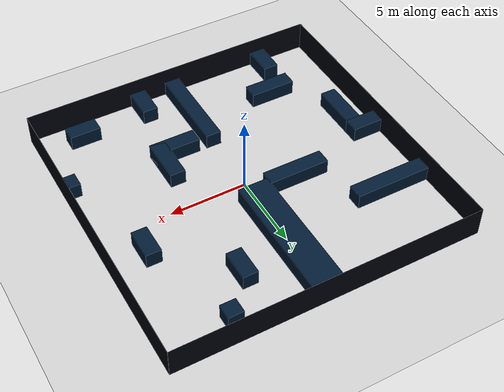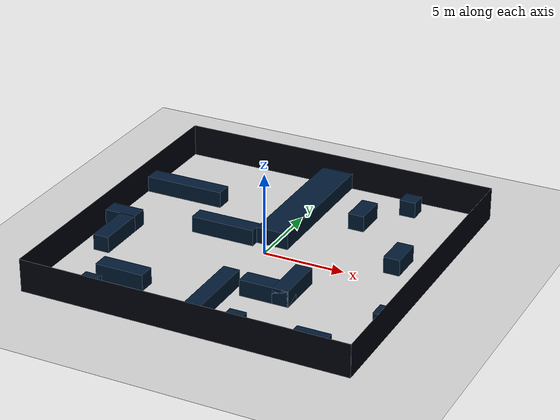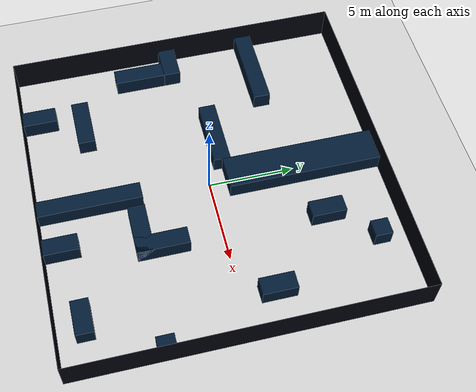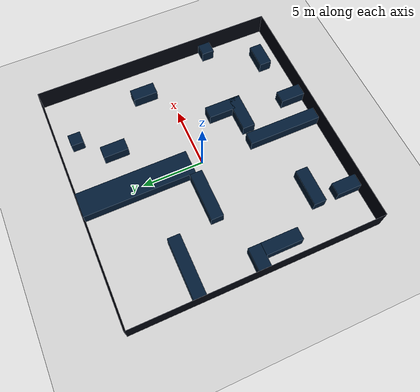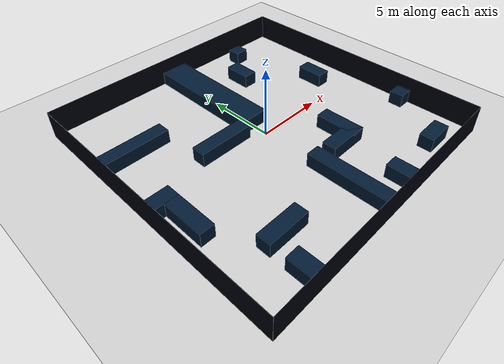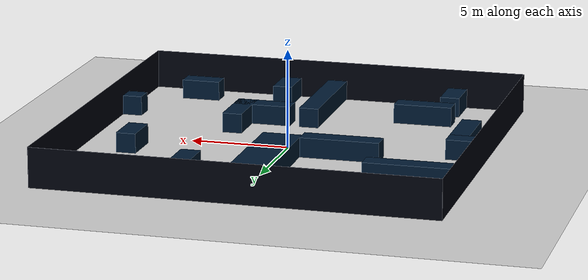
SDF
<?xml version="1.0"?>
<sdf version='1.8'>
    <world name='maze'>
        <physics name='1ms' type='ignored'>
            <max_step_size>0.003</max_step_size>
            <real_time_factor>1</real_time_factor>
            <real_time_update_rate>1000</real_time_update_rate>
        </physics>

        <plugin name="gz::sim::systems::Physics" filename="gz-sim-physics-system" />
        <plugin name="gz::sim::systems::UserCommands" filename="gz-sim-user-commands-system" />
        <plugin name="gz::sim::systems::SceneBroadcaster" filename="gz-sim-scene-broadcaster-system" />
        <plugin name="gz::sim::systems::Contact" filename="gz-sim-contact-system" />
        <plugin filename="gz-sim-sensors-system"
                name="gz::sim::systems::Sensors">
        <render_engine>ogre2</render_engine>
        </plugin>
        <plugin filename="gz-sim-imu-system"
                name="gz::sim::systems::Imu"/>

        <light name='sun' type='directional'>
            <cast_shadows>1</cast_shadows>
            <pose>0 0 10 0 -0 0</pose>
            <diffuse>0.8 0.8 0.8 1</diffuse>
            <specular>0.2 0.2 0.2 1</specular>
            <attenuation>
                <range>1000</range>
                <constant>0.90000000000000002</constant>
                <linear>0.01</linear>
                <quadratic>0.001</quadratic>
            </attenuation>
            <direction>-0.5 0.1 -0.9</direction>
            <spot>
                <inner_angle>0</inner_angle>
                <outer_angle>0</outer_angle>
                <falloff>0</falloff>
            </spot>
        </light>
        <gravity>0 0 -9.8</gravity>
        <magnetic_field>6e-06 2.3e-05 -4.2e-05</magnetic_field>
        <atmosphere type='adiabatic' />
        <scene>
            <ambient>0.4 0.4 0.4 1</ambient>
            <background>0.7 0.7 0.7 1</background>
            <shadows>1</shadows>
        </scene>
        <model name='ground_plane'>
            <static>1</static>
            <link name='link'>
                <collision name='collision'>
                    <geometry>
                        <plane>
                            <normal>0 0 1</normal>
                            <size>100 100</size>
                        </plane>
                    </geometry>
                    <surface>
                        <friction>
                            <ode />
                        </friction>
                        <bounce />
                        <contact />
                    </surface>
                </collision>
                <visual name='visual'>
                    <geometry>
                        <plane>
                            <normal>0 0 1</normal>
                            <size>100 100</size>
                        </plane>
                    </geometry>
                    <material>
                        <ambient>0.8 0.8 0.8 1</ambient>
                        <diffuse>0.8 0.8 0.8 1</diffuse>
                        <specular>0.8 0.8 0.8 1</specular>
                    </material>
                    <plugin name='__default__' filename='__default__' />
                </visual>
            </link>
            <plugin name='__default__' filename='__default__' />
            <pose>0 0 0 0 -0 0</pose>
        </model>

        <model name='border'>
            <pose>0 0 1 0 0 0</pose>
            <static>true</static>
            <link name='wall1'>
                <pose>-10.005 0 0 0 0 0</pose>
                <static>true</static>
                <collision name='wall1_collision'>
                    <geometry>
                        <box>
                            <size>0.01 20 2</size>
                        </box>
                    </geometry>
                </collision>
                <visual name='wall1_visual'>
                    <geometry>
                        <box>
                            <size>0.01 20 2</size>
                        </box>
                    </geometry>
                    <material>
                        <ambient>0.1 0.1 0.1 1</ambient>
                        <diffuse>0 0.01 0.05 1</diffuse>
                        <specular>0 0.01 0.05 1</specular>
                    </material>
                </visual>
            </link>
            <link name='wall2'>
                <pose>10.005 0 0 0 0 0</pose>
                <static>true</static>
                <collision name='wall2_collision'>
                    <geometry>
                        <box>
                            <size>0.01 20 2</size>
                        </box>
                    </geometry>
                </collision>
                <visual name='wall2_visual'>
                    <geometry>
                        <box>
                            <size>0.01 20 2</size>
                        </box>
                    </geometry>
                    <material>
                        <ambient>0.1 0.1 0.1 1</ambient>
                        <diffuse>0 0.01 0.05 1</diffuse>
                        <specular>0 0.01 0.05 1</specular>
                    </material>
                </visual>
            </link>
            <link name='wall3'>
                <pose>0 10.005 0 0 0 0</pose>
                <static>true</static>
                <collision name='wall3_collision'>
                    <geometry>
                        <box>
                            <size>20 0.01 2</size>
                        </box>
                    </geometry>
                </collision>
                <visual name='wall3_visual'>
                    <geometry>
                        <box>
                            <size>20 0.01 2</size>
                        </box>
                    </geometry>
                    <material>
                        <ambient>0.1 0.1 0.1 1</ambient>
                        <diffuse>0 0.01 0.05 1</diffuse>
                        <specular>0 0.01 0.05 1</specular>
                    </material>
                </visual>
            </link>
            <link name='wall4'>
                <pose>0 -10.005 0 0 0 0</pose>
                <static>true</static>
                <collision name='wall4_collision'>
                    <geometry>
                        <box>
                            <size>20 0.01 2</size>
                        </box>
                    </geometry>
                    <material>
                        <ambient>0.1 0.1 0.1 1</ambient>
                        <diffuse>0 0.01 0.05 1</diffuse>
                        <specular>0 0.01 0.05 1</specular>
                    </material>
                </collision>
                <visual name='wall4_visual'>
                    <geometry>
                        <box>
                            <size>20 0.01 2</size>
                        </box>
                    </geometry>
                    <material>
                        <ambient>0.1 0.1 0.1 1</ambient>
                        <diffuse>0 0.01 0.05 1</diffuse>
                        <specular>0 0.01 0.05 1</specular>
                    </material>
                </visual>
            </link>
        </model>

        <model name='obstacles'>
            <pose>0 0 0.5 0 0 0</pose>
            <static>true</static>
            <link name='wall1'>
                <pose>-6.5 -9 0 0 0 0</pose>
                <static>true</static>
                <collision name='wall1_collision'>
                    <geometry>
                        <box>
                            <size>1 2 1</size>
                        </box>
                    </geometry>
                </collision>
                <visual name='wall1_visual'>
                    <geometry>
                        <box>
                            <size>1 2 1</size>
                        </box>
                    </geometry>
                    <material>
                        <ambient>0.1 0.1 0.1 1</ambient>
                        <diffuse>0 0.1 0.2 1</diffuse>
                        <specular>0 0.01 0.05 1</specular>
                    </material>
                </visual>
            </link>

            <link name='wall2'>
                <pose>-5.5 -6.5 0 0 0 0</pose>
                <static>true</static>
                <collision name='wall2_collision'>
                    <geometry>
                        <box>
                            <size>3 1 1</size>
                        </box>
                    </geometry>
                </collision>
                <visual name='wall2_visual'>
                    <geometry>
                        <box>
                            <size>3 1 1</size>
                        </box>
                    </geometry>
                    <material>
                        <ambient>0.1 0.1 0.1 1</ambient>
                        <diffuse>0 0.1 0.2 1</diffuse>
                        <specular>0 0.01 0.05 1</specular>
                    </material>
                </visual>
            </link>

            <link name='wall3'>
                <pose>0 -7 0 0 0 0</pose>
                <static>true</static>
                <collision name='wall3_collision'>
                    <geometry>
                        <box>
                            <size>1 6 1</size>
                        </box>
                    </geometry>
                </collision>
                <visual name='wall3_visual'>
                    <geometry>
                        <box>
                            <size>1 6 1</size>
                        </box>
                    </geometry>
                    <material>
                        <ambient>0.1 0.1 0.1 1</ambient>
                        <diffuse>0 0.1 0.2 1</diffuse>
                        <specular>0 0.01 0.05 1</specular>
                    </material>
                </visual>
            </link>

            <link name='wall4'>
                <pose>2.5 -9 0 0 0 0</pose>
                <static>true</static>
                <collision name='wall4_collision'>
                    <geometry>
                        <box>
                            <size>1 2 1</size>
                        </box>
                    </geometry>
                </collision>
                <visual name='wall4_visual'>
                    <geometry>
                        <box>
                            <size>1 2 1</size>
                        </box>
                    </geometry>
                    <material>
                        <ambient>0.1 0.1 0.1 1</ambient>
                        <diffuse>0 0.1 0.2 1</diffuse>
                        <specular>0 0.01 0.05 1</specular>
                    </material>
                </visual>
            </link>

            <link name='wall5'>
                <pose>7 -8.5 0 0 0 0</pose>
                <static>true</static>
                <collision name='wall5_collision'>
                    <geometry>
                        <box>
                            <size>2 1 1</size>
                        </box>
                    </geometry>
                </collision>
                <visual name='wall5_visual'>
                    <geometry>
                        <box>
                            <size>2 1 1</size>
                        </box>
                    </geometry>
                    <material>
                        <ambient>0.1 0.1 0.1 1</ambient>
                        <diffuse>0 0.1 0.2 1</diffuse>
                        <specular>0 0.01 0.05 1</specular>
                    </material>
                </visual>
            </link>

            <link name='wall6'>
                <pose>-9 -0.5 0 0 0 0</pose>
                <static>true</static>
                <collision name='wall6_collision'>
                    <geometry>
                        <box>
                            <size>2 1 1</size>
                        </box>
                    </geometry>
                </collision>
                <visual name='wall6_visual'>
                    <geometry>
                        <box>
                            <size>2 1 1</size>
                        </box>
                    </geometry>
                    <material>
                        <ambient>0.1 0.1 0.1 1</ambient>
                        <diffuse>0 0.1 0.2 1</diffuse>
                        <specular>0 0.01 0.05 1</specular>
                    </material>
                </visual>
            </link>

            <link name='wall7'>
                <pose>-8.5 -2.5 0 0 0 0</pose>
                <static>true</static>
                <collision name='wall7_collision'>
                    <geometry>
                        <box>
                            <size>1 3 1</size>
                        </box>
                    </geometry>
                </collision>
                <visual name='wall7_visual'>
                    <geometry>
                        <box>
                            <size>1 3 1</size>
                        </box>
                    </geometry>
                    <material>
                        <ambient>0.1 0.1 0.1 1</ambient>
                        <diffuse>0 0.1 0.2 1</diffuse>
                        <specular>0 0.01 0.05 1</specular>
                    </material>
                </visual>
            </link>

            <link name='wall10'>
                <pose>-7.5 4.5 0 0 0 0</pose>
                <static>true</static>
                <collision name='wall10_collision'>
                    <geometry>
                        <box>
                            <size>5 1 1</size>
                        </box>
                    </geometry>
                </collision>
                <visual name='wall10_visual'>
                    <geometry>
                        <box>
                            <size>5 1 1</size>
                        </box>
                    </geometry>
                    <material>
                        <ambient>0.1 0.1 0.1 1</ambient>
                        <diffuse>0 0.1 0.2 1</diffuse>
                        <specular>0 0.01 0.05 1</specular>
                    </material>
                </visual>
            </link>

            <link name='wall11'>
                <pose>-3 1 0 0 0 0</pose>
                <static>true</static>
                <collision name='wall11_collision'>
                    <geometry>
                        <box>
                            <size>4 1 1</size>
                        </box>
                    </geometry>
                </collision>
                <visual name='wall11_visual'>
                    <geometry>
                        <box>
                            <size>4 1 1</size>
                        </box>
                    </geometry>
                    <material>
                        <ambient>0.1 0.1 0.1 1</ambient>
                        <diffuse>0 0.1 0.2 1</diffuse>
                        <specular>0 0.01 0.05 1</specular>
                    </material>
                </visual>
            </link>
            <link name='wall12'>
                <pose>0 5.5 0 0 0 0</pose>
                <static>true</static>
                <collision name='wall12_collision'>
                    <geometry>
                        <box>
                            <size>2 9 1</size>
                        </box>
                    </geometry>
                </collision>
                <visual name='wall12_visual'>
                    <geometry>
                        <box>
                            <size>2 9 1</size>
                        </box>
                    </geometry>
                    <material>
                        <ambient>0.1 0.1 0.1 1</ambient>
                        <diffuse>0 0.1 0.2 1</diffuse>
                        <specular>0 0.01 0.05 1</specular>
                    </material>
                </visual>
            </link>

            <link name='wall17'>
                <pose>2.5 -4.5 0 0 0 0</pose>
                <static>true</static>
                <collision name='wall17_collision'>
                    <geometry>
                        <box>
                            <size>3 1 1</size>
                        </box>
                    </geometry>
                </collision>
                <visual name='wall17_visual'>
                    <geometry>
                        <box>
                            <size>3 1 1</size>
                        </box>
                    </geometry>
                    <material>
                        <ambient>0.1 0.1 0.1 1</ambient>
                        <diffuse>0 0.1 0.2 1</diffuse>
                        <specular>0 0.01 0.05 1</specular>
                    </material>
                </visual>
            </link>

            <link name='wall21'>
                <pose>9.5 -4.5 0 0 0 0</pose>
                <static>true</static>
                <collision name='wall21_collision'>
                    <geometry>
                        <box>
                            <size>1 1 1</size>
                        </box>
                    </geometry>
                </collision>
                <visual name='wall21_visual'>
                    <geometry>
                        <box>
                            <size>1 1 1</size>
                        </box>
                    </geometry>
                    <material>
                        <ambient>0.1 0.1 0.1 1</ambient>
                        <diffuse>0 0.1 0.2 1</diffuse>
                        <specular>0 0.01 0.05 1</specular>
                    </material>
                </visual>
            </link>

            <link name='wall22'>
                <pose>3.5 -3.5 0 0 0 0</pose>
                <static>true</static>
                <collision name='wall22_collision'>
                    <geometry>
                        <box>
                            <size>1 3 1</size>
                        </box>
                    </geometry>
                </collision>
                <visual name='wall22_visual'>
                    <geometry>
                        <box>
                            <size>1 3 1</size>
                        </box>
                    </geometry>
                    <material>
                        <ambient>0.1 0.1 0.1 1</ambient>
                        <diffuse>0 0.1 0.2 1</diffuse>
                        <specular>0 0.01 0.05 1</specular>
                    </material>
                </visual>
            </link>

            <link name='wall24'>
                <pose>7.5 2 0 0 0 0</pose>
                <static>true</static>
                <collision name='wall24_collision'>
                    <geometry>
                        <box>
                            <size>1 2 1</size>
                        </box>
                    </geometry>
                </collision>
                <visual name='wall24_visual'>
                    <geometry>
                        <box>
                            <size>1 2 1</size>
                        </box>
                    </geometry>
                    <material>
                        <ambient>0.1 0.1 0.1 1</ambient>
                        <diffuse>0 0.1 0.2 1</diffuse>
                        <specular>0 0.01 0.05 1</specular>
                    </material>
                </visual>
            </link>

            <link name='wall26'>
                <pose>3.5 6 0 0 0 0</pose>
                <static>true</static>
                <collision name='wall26_collision'>
                    <geometry>
                        <box>
                            <size>1 2 1</size>
                        </box>
                    </geometry>
                </collision>
                <visual name='wall26_visual'>
                    <geometry>
                        <box>
                            <size>1 2 1</size>
                        </box>
                    </geometry>
                    <material>
                        <ambient>0.1 0.1 0.1 1</ambient>
                        <diffuse>0 0.1 0.2 1</diffuse>
                        <specular>0 0.01 0.05 1</specular>
                    </material>
                </visual>
            </link>

            <link name='wall28'>
                <pose>5.5 8.5 0 0 0 0</pose>
                <static>true</static>
                <collision name='wall28_collision'>
                    <geometry>
                        <box>
                            <size>1 1 1</size>
                        </box>
                    </geometry>
                </collision>
                <visual name='wall28_visual'>
                    <geometry>
                        <box>
                            <size>1 1 1</size>
                        </box>
                    </geometry>
                    <material>
                        <ambient>0.1 0.1 0.1 1</ambient>
                        <diffuse>0 0.1 0.2 1</diffuse>
                        <specular>0 0.01 0.05 1</specular>
                    </material>
                </visual>
            </link>

        </model>
    </world>
</sdf>
